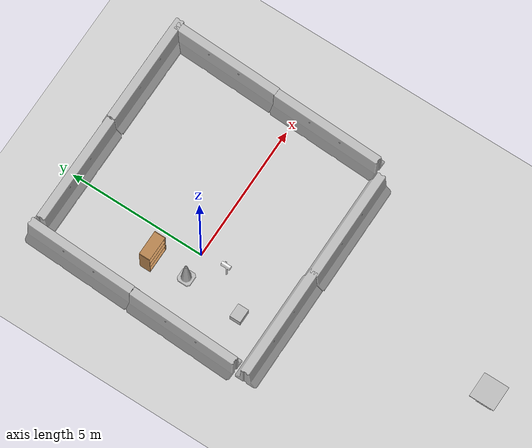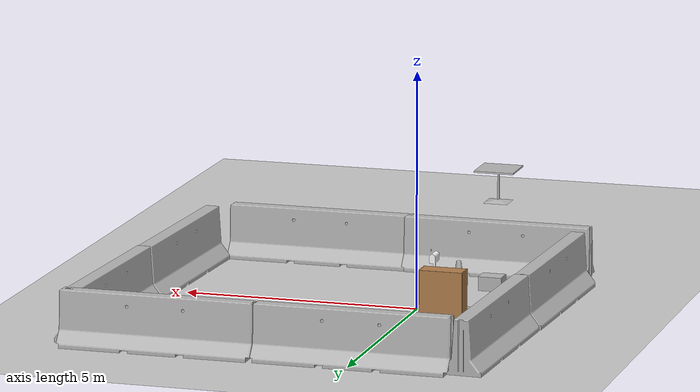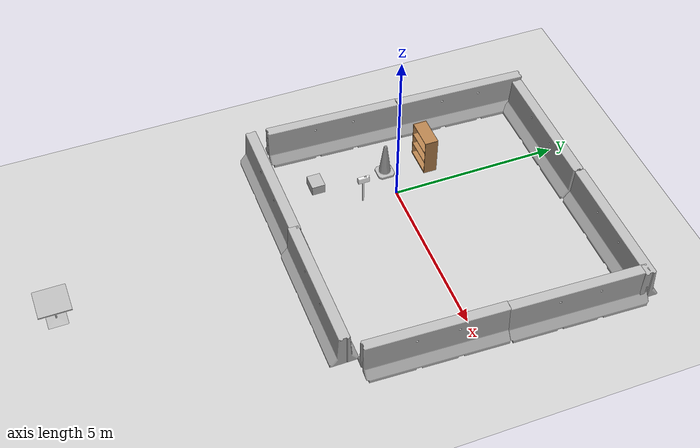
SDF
<sdf version="1.6">
 <world name="default">
  <light name="sun" type="directional">
   <pose>0 0 10 0 -0 0</pose>
   <diffuse>0.8 0.8 0.8 1</diffuse>
   <specular>0.2 0.2 0.2 1</specular>
   <attenuation>
    <range>1000</range>
    <constant>0.9</constant>
    <linear>0.01</linear>
    <quadratic>0.001</quadratic>
   </attenuation>
   <direction>-0.5 0.1 -0.9</direction>
  </light>
  <model name="ground_plane">
   <static>1</static>
   <link name="link">
    <collision name="collision">
     <geometry><plane><normal>0 0 1</normal><size>100 100</size></plane></geometry>
     <surface><friction><ode><mu>100</mu><mu2>50</mu2></ode></friction></surface>
    </collision>
    <visual name="visual">
     <cast_shadows>0</cast_shadows>
     <geometry><plane><normal>0 0 1</normal><size>100 100</size></plane></geometry>
     <material>
      <script><uri>file://media/materials/scripts/gazebo.material</uri><name>Gazebo/Grey</name></script>
     </material>
    </visual>
   </link>
  </model>
  <gravity>0 0 -9.8</gravity>
  <magnetic_field>6e-06 2.3e-05 -4.2e-05</magnetic_field>
  <atmosphere type="adiabatic"/>
  <physics name="default_physics" default="0" type="ode">
   <max_step_size>0.001</max_step_size>
   <real_time_factor>1</real_time_factor>
   <real_time_update_rate>1000</real_time_update_rate>
  </physics>
  <scene><ambient>0.4 0.4 0.4 1</ambient><background>0.7 0.7 0.7 1</background><shadows>1</shadows></scene>
  <audio><device>default</device></audio>
  <spherical_coordinates>
   <surface_model>EARTH_WGS84</surface_model>
   <latitude_deg>0</latitude_deg>
   <longitude_deg>0</longitude_deg>
   <elevation>0</elevation>
   <heading_deg>0</heading_deg>
  </spherical_coordinates>
  <model name="cafe_table">
   <static>1</static>
   <link name="link">
    <collision name="surface">
     <pose>0 0 0.755 0 -0 0</pose>
     <geometry><box><size>0.913 0.913 0.04</size></box></geometry>
    </collision>
    <collision name="column">
     <pose>0 0 0.37 0 -0 0</pose>
     <geometry><box><size>0.042 0.042 0.74</size></box></geometry>
    </collision>
    <collision name="base">
     <pose>0 0 0.02 0 -0 0</pose>
     <geometry><box><size>0.56 0.56 0.04</size></box></geometry>
    </collision>
    <visual name="visual">
     <geometry><mesh><uri>model://cafe_table/meshes/cafe_table.dae</uri></mesh></geometry>
    </visual>
   </link>
   <pose>1.00286 -10.2666 0 0 -0 0</pose>
  </model>
  <light name="user_spot_light_0" type="spot">
   <pose>-24.2851 -26.0389 1 0 -0 0</pose>
   <diffuse>0.5 0.5 0.5 1</diffuse>
   <specular>0.1 0.1 0.1 1</specular>
   <direction>0 0 -1</direction>
   <attenuation>
    <range>20</range>
    <constant>0.5</constant>
    <linear>0.01</linear>
    <quadratic>0.001</quadratic>
   </attenuation>
   <cast_shadows>0</cast_shadows>
   <spot><inner_angle>0.6</inner_angle><outer_angle>1</outer_angle><falloff>1</falloff></spot>
  </light>
  <model name="Construction Cone">
   <link name="link">
    <collision name="collision">
     <geometry>
      <mesh><scale>10 10 10</scale><uri>model://construction_cone/meshes/construction_cone.dae</uri></mesh>
     </geometry>
    </collision>
    <visual name="visual">
     <geometry>
      <mesh><scale>10 10 10</scale><uri>model://construction_cone/meshes/construction_cone.dae</uri></mesh>
     </geometry>
    </visual>
    <inertial>
     <inertia><ixx>1</ixx><ixy>0</ixy><ixz>0</ixz><iyy>1</iyy><iyz>0</iyz><izz>1</izz></inertia>
     <mass>1</mass>
    </inertial>
   </link>
   <pose>-0.893284 -0.012439 0 0 -0 0</pose>
  </model>
  <model name="bookshelf">
   <static>1</static>
   <link name="link">
    <inertial><mass>1</mass></inertial>
    <collision name="back">
     <pose>0 0.005 0.6 0 -0 0</pose>
     <geometry><box><size>0.9 0.01 1.2</size></box></geometry>
    </collision>
    <visual name="visual1">
     <pose>0 0.005 0.6 0 -0 0</pose>
     <geometry><box><size>0.9 0.01 1.2</size></box></geometry>
     <material>
      <script><uri>file://media/materials/scripts/gazebo.material</uri><name>Gazebo/Wood</name></script>
     </material>
    </visual>
    <collision name="left_side">
     <pose>0.45 -0.195 0.6 0 -0 0</pose>
     <geometry><box><size>0.02 0.4 1.2</size></box></geometry>
    </collision>
    <visual name="visual2">
     <pose>0.45 -0.195 0.6 0 -0 0</pose>
     <geometry><box><size>0.02 0.4 1.2</size></box></geometry>
     <material>
      <script><uri>file://media/materials/scripts/gazebo.material</uri><name>Gazebo/Wood</name></script>
     </material>
    </visual>
    <collision name="right_side">
     <pose>-0.45 -0.195 0.6 0 -0 0</pose>
     <geometry><box><size>0.02 0.4 1.2</size></box></geometry>
    </collision>
    <visual name="visual3">
     <pose>-0.45 -0.195 0.6 0 -0 0</pose>
     <geometry><box><size>0.02 0.4 1.2</size></box></geometry>
     <material>
      <script><uri>file://media/materials/scripts/gazebo.material</uri><name>Gazebo/Wood</name></script>
     </material>
    </visual>
    <collision name="bottom">
     <pose>0 -0.195 0.03 0 -0 0</pose>
     <geometry><box><size>0.88 0.4 0.06</size></box></geometry>
    </collision>
    <visual name="visual4">
     <pose>0 -0.195 0.03 0 -0 0</pose>
     <geometry><box><size>0.88 0.4 0.06</size></box></geometry>
     <material>
      <script><uri>file://media/materials/scripts/gazebo.material</uri><name>Gazebo/Wood</name></script>
     </material>
    </visual>
    <collision name="top">
     <pose>0 -0.195 1.19 0 -0 0</pose>
     <geometry><box><size>0.88 0.4 0.02</size></box></geometry>
    </collision>
    <visual name="visual5">
     <pose>0 -0.195 1.19 0 -0 0</pose>
     <geometry><box><size>0.88 0.4 0.02</size></box></geometry>
     <material>
      <script><uri>file://media/materials/scripts/gazebo.material</uri><name>Gazebo/Wood</name></script>
     </material>
    </visual>
    <collision name="low_shelf">
     <pose>0 -0.195 0.43 0 -0 0</pose>
     <geometry><box><size>0.88 0.4 0.02</size></box></geometry>
    </collision>
    <visual name="visual6">
     <pose>0 -0.195 0.43 0 -0 0</pose>
     <geometry><box><size>0.88 0.4 0.02</size></box></geometry>
     <material>
      <script><uri>file://media/materials/scripts/gazebo.material</uri><name>Gazebo/Wood</name></script>
     </material>
    </visual>
    <collision name="high_shelf">
     <pose>0 -0.195 0.8 0 -0 0</pose>
     <geometry><box><size>0.88 0.4 0.02</size></box></geometry>
    </collision>
    <visual name="visual7">
     <pose>0 -0.195 0.8 0 -0 0</pose>
     <geometry><box><size>0.88 0.4 0.02</size></box></geometry>
     <material>
      <script><uri>file://media/materials/scripts/gazebo.material</uri><name>Gazebo/Wood</name></script>
     </material>
    </visual>
   </link>
   <pose>-0.914176 1.45752 0 0 -0 0</pose>
  </model>
  <model name="Mailbox">
   <link name="link">
    <collision name="collision">
     <geometry><mesh><uri>model://mailbox/meshes/mailbox.dae</uri></mesh></geometry>
    </collision>
    <visual name="visual">
     <geometry><mesh><uri>model://mailbox/meshes/mailbox.dae</uri></mesh></geometry>
     <material>
      <script>
       <uri>model://mailbox/materials/scripts</uri>
       <uri>model://mailbox/materials/textures</uri>
       <name>Mailbox/Diffuse</name>
      </script>
     </material>
    </visual>
    <inertial>
     <inertia><ixx>1</ixx><ixy>0</ixy><ixz>0</ixz><iyy>1</iyy><iyz>0</iyz><izz>1</izz></inertia>
     <mass>1</mass>
    </inertial>
   </link>
   <pose>-0.089091 -1.02436 0 0 -0 0</pose>
  </model>
  <model name="jersey_barrier">
   <static>1</static>
   <link name="link">
    <visual name="visual">
     <geometry><mesh><uri>model://jersey_barrier/meshes/jersey_barrier.dae</uri></mesh></geometry>
    </visual>
    <collision name="upright">
     <pose>0 0 0.5715 0 -0 0</pose>
     <geometry><box><size>4.06542 0.3063 1.143</size></box></geometry>
    </collision>
    <collision name="base">
     <pose>0 0 0.032258 0 -0 0</pose>
     <geometry><box><size>4.06542 0.8107 0.064516</size></box></geometry>
    </collision>
    <collision name="base2">
     <pose>0 0 0.1 0 -0 0</pose>
     <geometry><box><size>4.06542 0.65 0.1</size></box></geometry>
    </collision>
    <collision name="base3">
     <pose>0 0 0.2 0 -0 0</pose>
     <geometry><box><size>4.06542 0.5 0.1</size></box></geometry>
    </collision>
    <collision name="left-angle">
     <pose>0 -0.224 0.2401 0.9 -0 0</pose>
     <geometry><box><size>4.06542 0.5 0.064516</size></box></geometry>
    </collision>
    <collision name="right-angle">
     <pose>0 0.224 0.2401 -0.9 0 0</pose>
     <geometry><box><size>4.06542 0.5 0.064516</size></box></geometry>
    </collision>
   </link>
   <pose>-0.78651 -3.52021 0 0 -0 0</pose>
  </model>
  <model name="jersey_barrier_clone">
   <static>1</static>
   <link name="link">
    <visual name="visual">
     <geometry><mesh><uri>model://jersey_barrier/meshes/jersey_barrier.dae</uri></mesh></geometry>
    </visual>
    <collision name="upright">
     <pose>0 0 0.5715 0 -0 0</pose>
     <geometry><box><size>4.06542 0.3063 1.143</size></box></geometry>
    </collision>
    <collision name="base">
     <pose>0 0 0.032258 0 -0 0</pose>
     <geometry><box><size>4.06542 0.8107 0.064516</size></box></geometry>
    </collision>
    <collision name="base2">
     <pose>0 0 0.1 0 -0 0</pose>
     <geometry><box><size>4.06542 0.65 0.1</size></box></geometry>
    </collision>
    <collision name="base3">
     <pose>0 0 0.2 0 -0 0</pose>
     <geometry><box><size>4.06542 0.5 0.1</size></box></geometry>
    </collision>
    <collision name="left-angle">
     <pose>0 -0.224 0.2401 0.9 -0 0</pose>
     <geometry><box><size>4.06542 0.5 0.064516</size></box></geometry>
    </collision>
    <collision name="right-angle">
     <pose>0 0.224 0.2401 -0.9 0 0</pose>
     <geometry><box><size>4.06542 0.5 0.064516</size></box></geometry>
    </collision>
   </link>
   <pose>3.12384 -3.55511 0 0 -0 0</pose>
  </model>
  <model name="jersey_barrier_clone_0">
   <static>1</static>
   <link name="link">
    <visual name="visual">
     <geometry><mesh><uri>model://jersey_barrier/meshes/jersey_barrier.dae</uri></mesh></geometry>
    </visual>
    <collision name="upright">
     <pose>0 0 0.5715 0 -0 0</pose>
     <geometry><box><size>4.06542 0.3063 1.143</size></box></geometry>
    </collision>
    <collision name="base">
     <pose>0 0 0.032258 0 -0 0</pose>
     <geometry><box><size>4.06542 0.8107 0.064516</size></box></geometry>
    </collision>
    <collision name="base2">
     <pose>0 0 0.1 0 -0 0</pose>
     <geometry><box><size>4.06542 0.65 0.1</size></box></geometry>
    </collision>
    <collision name="base3">
     <pose>0 0 0.2 0 -0 0</pose>
     <geometry><box><size>4.06542 0.5 0.1</size></box></geometry>
    </collision>
    <collision name="left-angle">
     <pose>0 -0.224 0.2401 0.9 -0 0</pose>
     <geometry><box><size>4.06542 0.5 0.064516</size></box></geometry>
    </collision>
    <collision name="right-angle">
     <pose>0 0.224 0.2401 -0.9 0 0</pose>
     <geometry><box><size>4.06542 0.5 0.064516</size></box></geometry>
    </collision>
   </link>
   <pose>-2.57691 -1.03409 0 0 -0 1.53187</pose>
  </model>
  <model name="jersey_barrier_clone_0_clone">
   <static>1</static>
   <link name="link">
    <visual name="visual">
     <geometry><mesh><uri>model://jersey_barrier/meshes/jersey_barrier.dae</uri></mesh></geometry>
    </visual>
    <collision name="upright">
     <pose>0 0 0.5715 0 -0 0</pose>
     <geometry><box><size>4.06542 0.3063 1.143</size></box></geometry>
    </collision>
    <collision name="base">
     <pose>0 0 0.032258 0 -0 0</pose>
     <geometry><box><size>4.06542 0.8107 0.064516</size></box></geometry>
    </collision>
    <collision name="base2">
     <pose>0 0 0.1 0 -0 0</pose>
     <geometry><box><size>4.06542 0.65 0.1</size></box></geometry>
    </collision>
    <collision name="base3">
     <pose>0 0 0.2 0 -0 0</pose>
     <geometry><box><size>4.06542 0.5 0.1</size></box></geometry>
    </collision>
    <collision name="left-angle">
     <pose>0 -0.224 0.2401 0.9 -0 0</pose>
     <geometry><box><size>4.06542 0.5 0.064516</size></box></geometry>
    </collision>
    <collision name="right-angle">
     <pose>0 0.224 0.2401 -0.9 0 0</pose>
     <geometry><box><size>4.06542 0.5 0.064516</size></box></geometry>
    </collision>
   </link>
   <pose>-2.40464 2.99412 0 0 -0 1.53187</pose>
  </model>
  <model name="jersey_barrier_clone_1">
   <static>1</static>
   <link name="link">
    <visual name="visual">
     <geometry><mesh><uri>model://jersey_barrier/meshes/jersey_barrier.dae</uri></mesh></geometry>
    </visual>
    <collision name="upright">
     <pose>0 0 0.5715 0 -0 0</pose>
     <geometry><box><size>4.06542 0.3063 1.143</size></box></geometry>
    </collision>
    <collision name="base">
     <pose>0 0 0.032258 0 -0 0</pose>
     <geometry><box><size>4.06542 0.8107 0.064516</size></box></geometry>
    </collision>
    <collision name="base2">
     <pose>0 0 0.1 0 -0 0</pose>
     <geometry><box><size>4.06542 0.65 0.1</size></box></geometry>
    </collision>
    <collision name="base3">
     <pose>0 0 0.2 0 -0 0</pose>
     <geometry><box><size>4.06542 0.5 0.1</size></box></geometry>
    </collision>
    <collision name="left-angle">
     <pose>0 -0.224 0.2401 0.9 -0 0</pose>
     <geometry><box><size>4.06542 0.5 0.064516</size></box></geometry>
    </collision>
    <collision name="right-angle">
     <pose>0 0.224 0.2401 -0.9 0 0</pose>
     <geometry><box><size>4.06542 0.5 0.064516</size></box></geometry>
    </collision>
   </link>
   <pose>-0.053982 4.78697 0 0 -0 0</pose>
  </model>
  <model name="jersey_barrier_clone_2">
   <static>1</static>
   <link name="link">
    <visual name="visual">
     <geometry><mesh><uri>model://jersey_barrier/meshes/jersey_barrier.dae</uri></mesh></geometry>
    </visual>
    <collision name="upright">
     <pose>0 0 0.5715 0 -0 0</pose>
     <geometry><box><size>4.06542 0.3063 1.143</size></box></geometry>
    </collision>
    <collision name="base">
     <pose>0 0 0.032258 0 -0 0</pose>
     <geometry><box><size>4.06542 0.8107 0.064516</size></box></geometry>
    </collision>
    <collision name="base2">
     <pose>0 0 0.1 0 -0 0</pose>
     <geometry><box><size>4.06542 0.65 0.1</size></box></geometry>
    </collision>
    <collision name="base3">
     <pose>0 0 0.2 0 -0 0</pose>
     <geometry><box><size>4.06542 0.5 0.1</size></box></geometry>
    </collision>
    <collision name="left-angle">
     <pose>0 -0.224 0.2401 0.9 -0 0</pose>
     <geometry><box><size>4.06542 0.5 0.064516</size></box></geometry>
    </collision>
    <collision name="right-angle">
     <pose>0 0.224 0.2401 -0.9 0 0</pose>
     <geometry><box><size>4.06542 0.5 0.064516</size></box></geometry>
    </collision>
   </link>
   <pose>4.01588 4.80684 0 0 -0 0</pose>
  </model>
  <model name="jersey_barrier_clone_0_clone_0">
   <static>1</static>
   <link name="link">
    <visual name="visual">
     <geometry><mesh><uri>model://jersey_barrier/meshes/jersey_barrier.dae</uri></mesh></geometry>
    </visual>
    <collision name="upright">
     <pose>0 0 0.5715 0 -0 0</pose>
     <geometry><box><size>4.06542 0.3063 1.143</size></box></geometry>
    </collision>
    <collision name="base">
     <pose>0 0 0.032258 0 -0 0</pose>
     <geometry><box><size>4.06542 0.8107 0.064516</size></box></geometry>
    </collision>
    <collision name="base2">
     <pose>0 0 0.1 0 -0 0</pose>
     <geometry><box><size>4.06542 0.65 0.1</size></box></geometry>
    </collision>
    <collision name="base3">
     <pose>0 0 0.2 0 -0 0</pose>
     <geometry><box><size>4.06542 0.5 0.1</size></box></geometry>
    </collision>
    <collision name="left-angle">
     <pose>0 -0.224 0.2401 0.9 -0 0</pose>
     <geometry><box><size>4.06542 0.5 0.064516</size></box></geometry>
    </collision>
    <collision name="right-angle">
     <pose>0 0.224 0.2401 -0.9 0 0</pose>
     <geometry><box><size>4.06542 0.5 0.064516</size></box></geometry>
    </collision>
   </link>
   <pose>5.57058 -1.19313 0 0 -0 1.53187</pose>
  </model>
  <model name="jersey_barrier_clone_0_clone_1">
   <static>1</static>
   <link name="link">
    <visual name="visual">
     <geometry><mesh><uri>model://jersey_barrier/meshes/jersey_barrier.dae</uri></mesh></geometry>
    </visual>
    <collision name="upright">
     <pose>0 0 0.5715 0 -0 0</pose>
     <geometry><box><size>4.06542 0.3063 1.143</size></box></geometry>
    </collision>
    <collision name="base">
     <pose>0 0 0.032258 0 -0 0</pose>
     <geometry><box><size>4.06542 0.8107 0.064516</size></box></geometry>
    </collision>
    <collision name="base2">
     <pose>0 0 0.1 0 -0 0</pose>
     <geometry><box><size>4.06542 0.65 0.1</size></box></geometry>
    </collision>
    <collision name="base3">
     <pose>0 0 0.2 0 -0 0</pose>
     <geometry><box><size>4.06542 0.5 0.1</size></box></geometry>
    </collision>
    <collision name="left-angle">
     <pose>0 -0.224 0.2401 0.9 -0 0</pose>
     <geometry><box><size>4.06542 0.5 0.064516</size></box></geometry>
    </collision>
    <collision name="right-angle">
     <pose>0 0.224 0.2401 -0.9 0 0</pose>
     <geometry><box><size>4.06542 0.5 0.064516</size></box></geometry>
    </collision>
   </link>
   <pose>5.75044 2.81208 0 0 -0 1.53187</pose>
  </model>
  <model name="cardboard_box">
   <pose>-1.03651 -2.1361 0.15 0 -0 0</pose>
   <link name="link">
    <inertial>
     <mass>2</mass>
     <inertia>
      <ixx>0.0416667</ixx>
      <ixy>0</ixy>
      <ixz>0</ixz>
      <iyy>0.0566667</iyy>
      <iyz>0</iyz>
      <izz>0.0683333</izz>
     </inertia>
    </inertial>
    <collision name="collision">
     <geometry><box><size>0.5 0.4 0.3</size></box></geometry>
     <surface>
      <friction><ode><mu>1</mu><mu2>1</mu2></ode></friction>
      <contact><ode><kp>1e+07</kp><kd>1</kd><min_depth>0.001</min_depth><max_vel>0.1</max_vel></ode></contact>
     </surface>
    </collision>
    <visual name="visual">
     <pose>0 0 -0.15 0 -0 0</pose>
     <geometry>
      <mesh><uri>model://cardboard_box/meshes/cardboard_box.dae</uri><scale>1.25932 1.00745 0.755591</scale></mesh>
     </geometry>
    </visual>
   </link>
  </model>
 </world>
</sdf>
